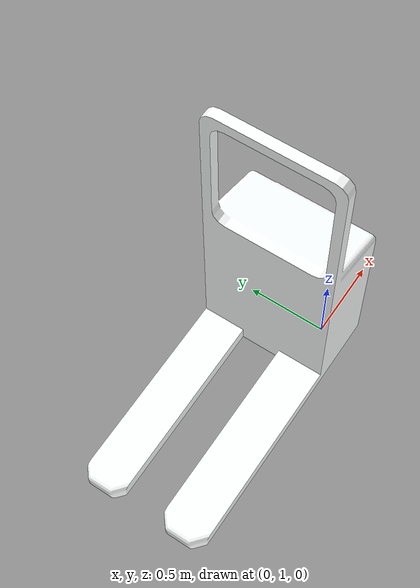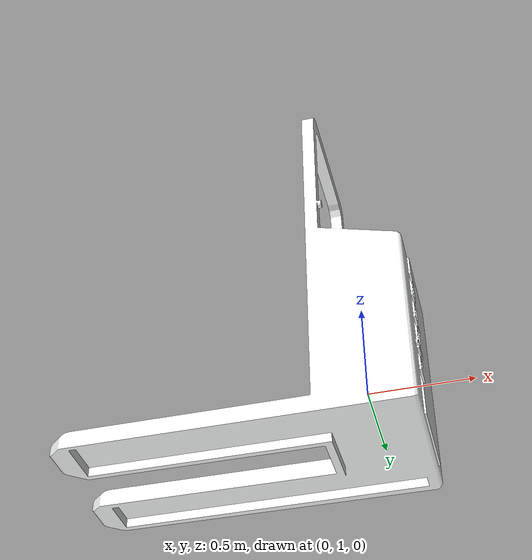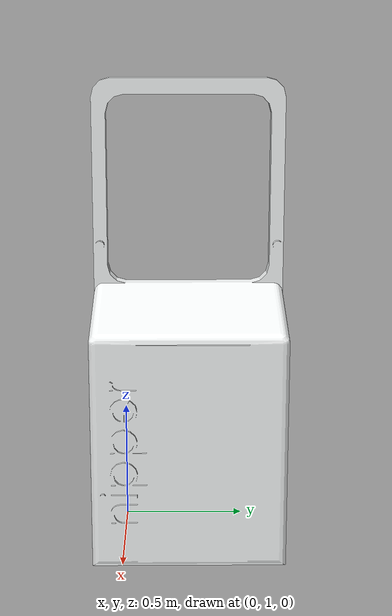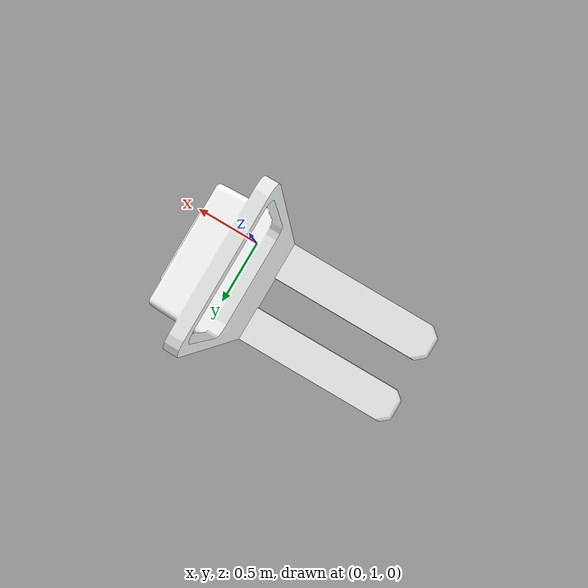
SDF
<sdf version='1.11'>
  <model name='nipper_sarthak_gazebo_axis_correction'>
    <link name='base_link'>
      <inertial>
        <pose>0.079628000000000004 0.40333999999999998 1.2708999999999999 0 0 0</pose>
        <mass>476.25</mass>
        <inertia>
          <ixx>93.079999999999998</ixx>
          <ixy>13.525</ixy>
          <ixz>-0.12695999999999999</ixz>
          <iyy>72.900999999999996</iyy>
          <iyz>0.20512</iyz>
          <izz>108.83</izz>
        </inertia>
      </inertial>
      <collision name='base_link_collision'>
        <pose>0 0 0 0 0 0</pose>
        <geometry>
          <mesh>
            <scale>1 1 1</scale>
            <uri>model://nipper_sarthak_gazebo_axis_correction/meshes/base_link.STL</uri>
          </mesh>
        </geometry>
      </collision>
      <visual name='base_link_visual'>
        <pose>0 0 0 0 0 0</pose>
        <geometry>
          <mesh>
            <scale>1 1 1</scale>
            <uri>model://nipper_sarthak_gazebo_axis_correction/meshes/base_link.STL</uri>
          </mesh>
        </geometry>
        <material>
          <diffuse>0.990199983 1 1 1</diffuse>
          <ambient>0.990199983 1 1 1</ambient>
        </material>
      </visual>
    </link>
  </model>
</sdf>
